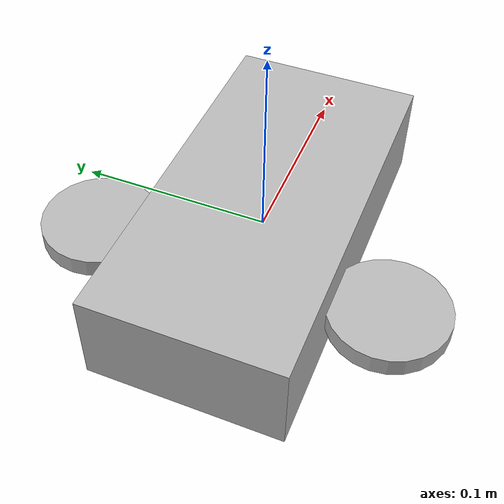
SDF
<sdf version='1.7'>
  <model name='line_follower'>
    <link name='world'>
      <pose>0 0 0 0 0 0</pose>
    </link>

    <joint name='world_joint' type='fixed'>
      <parent>world</parent>
      <child>base_link</child>
      <pose>0 0 0.1 0 0 0</pose>
    </joint>

    <!-- Base Link -->
    <link name='base_link'>
      <inertial>
        <pose>0 0 0 0 0 0</pose>
        <mass>0.100515</mass>
        <inertia>
          <ixx>4.93963e-05</ixx>
          <ixy>0</ixy>
          <ixz>0</ixz>
          <iyy>0.000176818</iyy>
          <iyz>0</iyz>
          <izz>0.000222571</izz>
        </inertia>
      </inertial>
      <collision name='base_link_collision'>
        <pose>0 0 0 0 0 0</pose>
        <geometry>
          <box>
            <size>0.2 0.1 0.05</size>
          </box>
        </geometry>
      </collision>
      <visual name='base_link_visual'>
        <pose>0 0 0 0 0 0</pose>
        <geometry>
          <box>
            <size>0.2 0.1 0.05</size>
          </box>
        </geometry>
      </visual>
    </link>

    <!-- Castor -->
    <link name='castor'>
      <pose>0.072581 0 0 0 0 0</pose>
      <inertial>
        <mass>0.0397325</mass>
        <pose>0 0 0 0 0 0</pose>
        <inertia>
          <ixx>3.91274e-06</ixx>
          <iyy>4.05639e-06</iyy>
          <izz>7.03701e-06</izz>
          <ixy>0</ixy>
          <ixz>0</ixz>
          <iyz>0</iyz>
        </inertia>
      </inertial>
      <collision name='castor_collision'>
        <geometry>
          <cylinder>
            <radius>0.02</radius>
            <length>0.02</length>
          </cylinder>
        </geometry>
      </collision>
      <visual name='castor_visual'>
        <geometry>
          <cylinder>
            <radius>0.02</radius>
            <length>0.02</length>
          </cylinder>
        </geometry>
      </visual>
    </link>

    <joint name='castorjoint' type='revolute'>
      <parent>base_link</parent>
      <child>castor</child>
      <axis>
        <xyz>0 0 1</xyz>
      </axis>
    </joint>

    <!-- Castor Wheel -->
    <link name='castor_wheel'>
      <pose>0.015 0 0 0 0 0</pose>
      <inertial>
        <mass>0.0082874</mass>
        <pose>0 0 0 0 0 0</pose>
        <inertia>
          <ixx>6.393e-07</ixx>
          <iyy>6.39267e-07</iyy>
          <izz>1.01109e-06</izz>
          <ixy>0</ixy>
          <ixz>0</ixz>
          <iyz>0</iyz>
        </inertia>
      </inertial>
      <collision name='castor_wheel_collision'>
        <geometry>
          <cylinder>
            <radius>0.01</radius>
            <length>0.005</length>
          </cylinder>
        </geometry>
      </collision>
      <visual name='castor_wheel_visual'>
        <geometry>
          <cylinder>
            <radius>0.01</radius>
            <length>0.005</length>
          </cylinder>
        </geometry>
      </visual>
    </link>

    <joint name='castorwheel' type='revolute'>
      <parent>castor</parent>
      <child>castor_wheel</child>
      <axis>
        <xyz>0 1 0</xyz>
      </axis>
    </joint>

    <!-- Left Wheel -->
    <link name='left_wheel'>
      <pose>-0.033259 0.07575 0 0 0 0</pose>
      <inertial>
        <mass>0.0214042</mass>
        <pose>0 0 0 0 0 0</pose>
        <inertia>
          <ixx>8.62832e-06</ixx>
          <iyy>8.62688e-06</iyy>
          <izz>1.45152e-05</izz>
          <ixy>0</ixy>
          <ixz>0</ixz>
          <iyz>0</iyz>
        </inertia>
      </inertial>
      <collision name='left_wheel_collision'>
        <geometry>
          <cylinder>
            <radius>0.03</radius>
            <length>0.01</length>
          </cylinder>
        </geometry>
      </collision>
      <visual name='left_wheel_visual'>
        <geometry>
          <cylinder>
            <radius>0.03</radius>
            <length>0.01</length>
          </cylinder>
        </geometry>
      </visual>
    </link>

    <joint name='leftwheel' type='revolute'>
      <parent>base_link</parent>
      <child>left_wheel</child>
      <axis>
        <xyz>0 0 1</xyz>
      </axis>
    </joint>

    <!-- Right Wheel -->
    <link name='right_wheel'>
      <pose>-0.033259 -0.07575 0 0 0 0</pose>
      <inertial>
        <mass>0.0214042</mass>
        <pose>0 0 0 0 0 0</pose>
        <inertia>
          <ixx>8.62832e-06</ixx>
          <iyy>8.62688e-06</iyy>
          <izz>1.45152e-05</izz>
          <ixy>0</ixy>
          <ixz>0</ixz>
          <iyz>0</iyz>
        </inertia>
      </inertial>
      <collision name='right_wheel_collision'>
        <geometry>
          <cylinder>
            <radius>0.03</radius>
            <length>0.01</length>
          </cylinder>
        </geometry>
      </collision>
      <visual name='right_wheel_visual'>
        <geometry>
          <cylinder>
            <radius>0.03</radius>
            <length>0.01</length>
          </cylinder>
        </geometry>
      </visual>
    </link>

    <joint name='rightwheel' type='revolute'>
      <parent>base_link</parent>
      <child>right_wheel</child>
      <axis>
        <xyz>0 0 1</xyz>
      </axis>
    </joint>
  </model>
</sdf>
